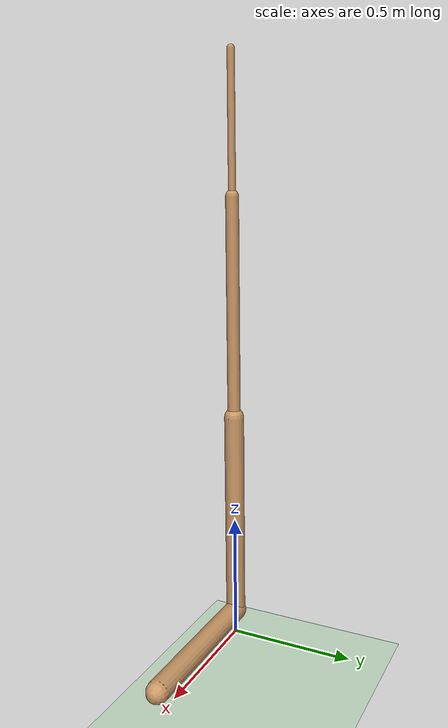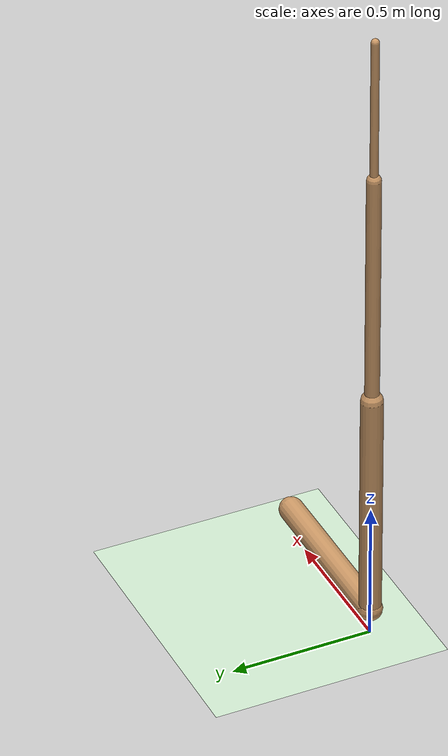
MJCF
<mujoco model="walker2d">
  <compiler angle="degree" inertiafromgeom="true" />
  <default>
    <joint armature="0.01" damping=".1" limited="true" />
    <geom conaffinity="0" condim="3" contype="1" density="1000" friction=".7 .1 .1" rgba="0.8 0.6 .4 1" />
  </default>
  <option integrator="RK4" timestep="0.002" />
  <worldbody>
    <light cutoff="100" diffuse="1 1 1" dir="-0 0 -1.3" directional="true" exponent="1" pos="0 0 1.3" specular=".1 .1 .1" />
    <geom conaffinity="1" condim="3" name="floor" pos="0 0 0" rgba="0.8 0.9 0.8 1" size="40 40 40" type="plane" material="MatPlane" />
    <body name="torso" pos="0 0 2.0389300644397736">
      <camera name="track" mode="trackcom" pos="0 -5 -1.25" xyaxes="1 0 0 0 0 1" />
      <joint armature="0" axis="1 0 0" damping="0" limited="false" name="rootx" pos="0 0 -1.25" stiffness="0" type="slide" />
      <joint armature="0" axis="0 0 1" damping="0" limited="false" name="rootz" pos="0 0 -1.25" ref="1.25" stiffness="0" type="slide" />
      <joint armature="0" axis="0 1 0" damping="0" limited="false" name="rooty" pos="0 0 0" stiffness="0" type="hinge" />
      <geom friction="0.9" name="torso_geom" size="0.014009451493620872 0.25442060828208923" type="capsule" />
      <body name="thigh" pos="0 0 -0.25442060828208923">
        <joint axis="0 -1 0" name="thigh_joint" pos="0 0 0" range="-150 0" type="hinge" />
        <site name="torso_thigh_site" pos="0 0 0" size="0.01" type="sphere" rgba="1 0 0 0.5" />
        <geom friction="0.9" pos="0 0 -0.42318105697631836" name="thigh_geom" size="0.025024225935339928 0.42318105697631836" type="capsule" />
        <body name="leg" pos="0 0 -1.2654357850551605">
          <joint axis="0 -1 0" name="leg_joint" pos="0 0 0.4190736711025238" range="-150 0" type="hinge" />
          <site name="thigh_leg_site" pos="0 0 0.25" size="0.01" type="sphere" rgba="1 0 0 0.5" />
          <geom friction="0.9" name="leg_geom" size="0.03858986496925354 0.4190736711025238" type="capsule" />
          <body name="foot" pos="0.608889639377594 0 -0.5190736711025238">
            <joint axis="0 -1 0" name="foot_joint" pos="-0.608889639377594 0 0.1" range="-45 45" type="hinge" />
            <site name="leg_foot_site" pos="-0.2 0 0.1" size="0.01" type="sphere" rgba="1 0 0 0.5" />
            <geom friction="0.9" pos="-0.304444819688797 0 0.1" quat="0.70710678118654757 0 -0.70710678118654746 0" name="foot_geom" size="0.043245669454336166 0.304444819688797" type="capsule" />
          </body>
        </body>
      </body>

      <body name="thigh_left" pos="0 0 -0.25442060828208923">
        <joint axis="0 -1 0" name="thigh_left_joint" pos="0 0 0" range="-150 0" type="hinge" />
        <site name="torso_thigh_left_site" pos="0 0 0" size="0.01" type="sphere" rgba="1 0 0 0.5" />
        <geom friction="0.9" name="thigh_left_geom" rgba=".7 .3 .6 1" size="0.025024225935339928 0.42318105697631836" pos="0 0 -0.42318105697631836" type="capsule" />
        <body name="leg_left" pos="0 0 -1.2654357850551605">
          <joint axis="0 -1 0" name="leg_left_joint" pos="0 0 0.4190736711025238" range="-150 0" type="hinge" />
          <site name="thigh_leg_left_site" pos="0 0 0.25" size="0.01" type="sphere" rgba="1 0 0 0.5" />
          <geom friction="0.9" name="leg_left_geom" rgba=".7 .3 .6 1" size="0.03858986496925354 0.4190736711025238" type="capsule" />
          <body name="foot_left" pos="0.608889639377594 0 -0.5190736711025238">
            <joint axis="0 -1 0" name="foot_left_joint" pos="-0.608889639377594 0 0.1" range="-45 45" type="hinge" />
            <site name="leg_foot_left_site" pos="-0.2 0 0.1" size="0.01" type="sphere" rgba="1 0 0 0.5" />
            <geom friction="1.9" name="foot_left_geom" rgba=".7 .3 .6 1" size="0.043245669454336166 0.304444819688797" pos="-0.304444819688797 0 0.1" type="capsule" quat="0.70710678118654757 0 -0.70710678118654746 0" />
          </body>
        </body>
      </body>
    </body>
  </worldbody>
  <actuator>

    <motor ctrllimited="true" ctrlrange="-1.0 1.0" gear="47.11129010126471" joint="thigh_joint" />
    <motor ctrllimited="true" ctrlrange="-1.0 1.0" gear="156.01878914701632" joint="leg_joint" />
    <motor ctrllimited="true" ctrlrange="-1.0 1.0" gear="158.15806280105764" joint="foot_joint" />
    <motor ctrllimited="true" ctrlrange="-1.0 1.0" gear="47.11129010126471" joint="thigh_left_joint" />
    <motor ctrllimited="true" ctrlrange="-1.0 1.0" gear="156.01878914701632" joint="leg_left_joint" />
    <motor ctrllimited="true" ctrlrange="-1.0 1.0" gear="158.15806280105764" joint="foot_left_joint" />

  </actuator>
    <asset>
        <texture type="skybox" builtin="gradient" rgb1=".4 .5 .6" rgb2="0 0 0" width="100" height="100" />
        <texture builtin="flat" height="1278" mark="cross" markrgb="1 1 1" name="texgeom" random="0.01" rgb1="0.8 0.6 0.4" rgb2="0.8 0.6 0.4" type="cube" width="127" />
        <texture builtin="checker" height="100" name="texplane" rgb1="0 0 0" rgb2="0.8 0.8 0.8" type="2d" width="100" />
        <material name="MatPlane" reflectance="0.5" shininess="1" specular="1" texrepeat="60 60" texture="texplane" />
        <material name="geom" texture="texgeom" texuniform="true" />
    </asset>

  <sensor>
    <force site="torso_thigh_site" name="torso_thigh_sensor" />
    <force site="thigh_leg_site" name="thigh_leg_sensor" />
    <force site="leg_foot_site" name="leg_foot_sensor" />
    <force site="torso_thigh_left_site" name="torso_thigh_left_sensor" />
    <force site="thigh_leg_left_site" name="thigh_leg_left_sensor" />
    <force site="leg_foot_left_site" name="leg_foot_left_sensor" />
  </sensor>
</mujoco>
